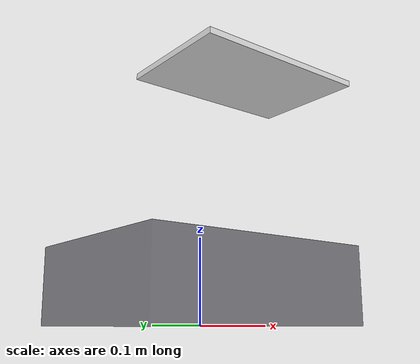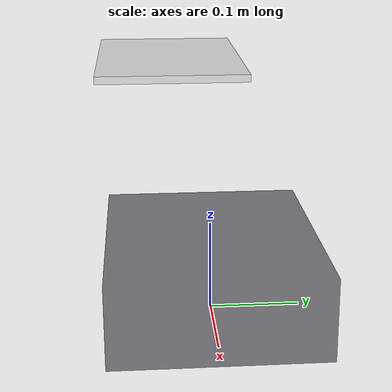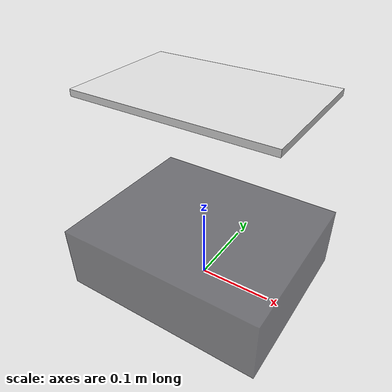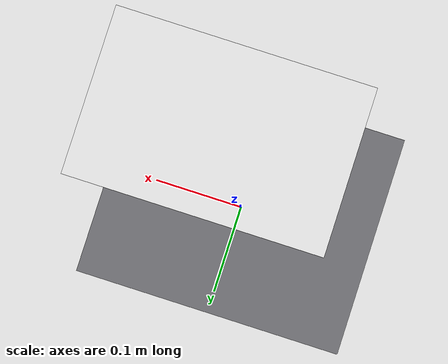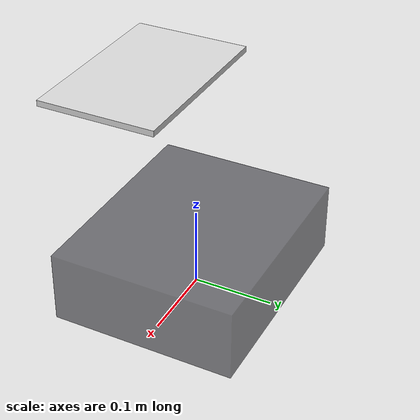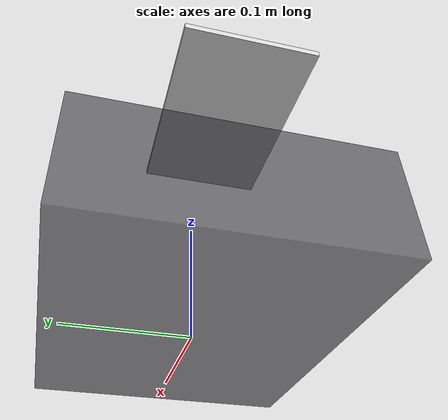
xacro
<?xml version="1.0"?>
<robot xmlns:xacro="http://www.ros.org/wiki/xacro" name="mecanum_x3">

  <xacro:include filename="$(find slam_bringup)/urdf/sensors_common.urdf.xacro"/>

  <!-- Plate height tape-measured 11.5 in (2026-06-10). Chassis bbox below
       is still approximate (cosmetic only). -->
  <xacro:property name="base_link_to_plate_top" value="0.29210"/>
  <xacro:property name="chassis_length"         value="0.280"/>
  <xacro:property name="chassis_width"          value="0.230"/>
  <xacro:property name="chassis_height"         value="0.090"/>

  <xacro:property name="plate_size_x"   value="0.2159"/>
  <xacro:property name="plate_size_y"   value="0.1397"/>
  <xacro:property name="plate_offset_x" value="${ (chassis_length - plate_size_x)/2}"/>
  <xacro:property name="plate_offset_y" value="${-(chassis_width  - plate_size_y)/2}"/>

  <link name="base_link">
    <visual>
      <origin xyz="0 0 ${chassis_height/2}" rpy="0 0 0"/>
      <geometry>
        <box size="${chassis_length} ${chassis_width} ${chassis_height}"/>
      </geometry>
      <material name="chassis_x3">
        <color rgba="0.15 0.15 0.18 0.6"/>
      </material>
    </visual>
  </link>

  <joint name="base_link_to_sensor_plate" type="fixed">
    <parent link="base_link"/>
    <child  link="sensor_plate"/>
    <origin xyz="${plate_offset_x} ${plate_offset_y} ${base_link_to_plate_top}" rpy="0 0 0"/>
  </joint>

</robot>

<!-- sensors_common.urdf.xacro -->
<robot xmlns:xacro="http://www.ros.org/wiki/xacro" name="sensor_rig">

  <xacro:property name="plate_thickness"        value="0.007"/>      <!-- 7 mm ASA -->
  <xacro:property name="rubber_compressed"      value="0.022987"/>
  <xacro:property name="extrusion_2040_height"  value="0.040"/>      <!-- 40 mm vertical face -->
  <xacro:property name="extrusion_2020_height"  value="0.020"/>      <!-- 20 mm vertical face -->
  <xacro:property name="jetson_cavity_height"   value="0.097683"/>   <!-- 2020 post span -->
  <xacro:property name="base_link_to_plate_top" value="0.207670"/>   <!-- 2040 + cavity + 2040 + rubber + plate (8.176 in) -->

  <!-- ============== Sensor offsets (sensor_plate frame) ==============
       sensor_plate origin = top surface of the lidar plate, body
       convention (+X forward / +Y left / +Z up). -->

  <xacro:property name="livox_xyz" value="-0.025 0.0 0.03661"/>
  <xacro:property name="livox_rpy" value="0.0 0.0 0.0"/>

  <xacro:property name="imu_xyz" value="0.060 0.0 0.009"/>
  <xacro:property name="imu_rpy" value="0.0 0.0 0.0"/>

  <xacro:property name="d435_front_xyz" value="0.146761 0.0 -0.028502"/>
  <xacro:property name="d435_front_rpy" value="0.0 0.176136 0.0"/>

  <!-- ============== Links + joints ============== -->

  <link name="sensor_plate">
    <!-- Visual: the 5.5" x 8.5" x 7 mm ASA plate, drawn at plate_top = 0.
         Origin shifted -plate_thickness/2 in Z so the visual sits
         BELOW sensor_plate (plate top stays at Z=0). -->
    <visual>
      <origin xyz="0 0 ${-plate_thickness/2}" rpy="0 0 0"/>
      <geometry>
        <box size="0.2159 0.1397 ${plate_thickness}"/>
      </geometry>
      <material name="plate_asa">
        <color rgba="0.85 0.85 0.85 1.0"/>
      </material>
    </visual>
  </link>

  <link name="livox_frame"/>
  <joint name="sensor_plate_to_livox_frame" type="fixed">
    <parent link="sensor_plate"/>
    <child  link="livox_frame"/>
    <origin xyz="${livox_xyz}" rpy="${livox_rpy}"/>
  </joint>

  <link name="imu_link"/>
  <joint name="sensor_plate_to_imu_link" type="fixed">
    <parent link="sensor_plate"/>
    <child  link="imu_link"/>
    <origin xyz="${imu_xyz}" rpy="${imu_rpy}"/>
  </joint>

  <link name="d435_front_link"/>
  <joint name="sensor_plate_to_d435_front_link" type="fixed">
    <parent link="sensor_plate"/>
    <child  link="d435_front_link"/>
    <origin xyz="${d435_front_xyz}" rpy="${d435_front_rpy}"/>
  </joint>

  <!-- d435_rear_link is declared in the platform xacros (Phase 1.10),
       not here, because the rear camera mount is platform-specific. -->

</robot>
